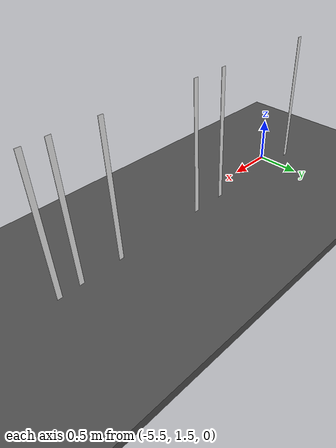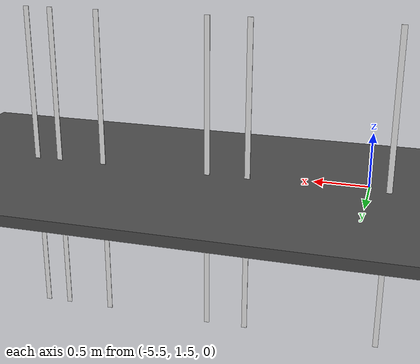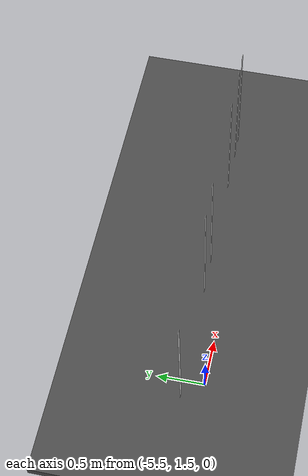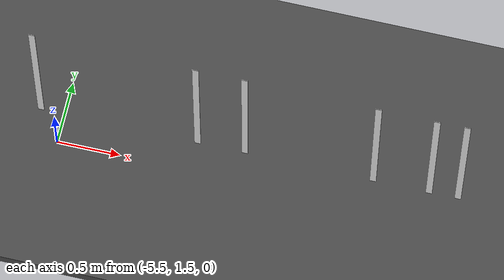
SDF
<sdf version="1.7">
 <world name="default">
  <model name="ground_plane">
   <static>1</static>
   <link name="link">
    <collision name="collision">
     <geometry><plane><normal>0 0 1</normal><size>100 100</size></plane></geometry>
     <surface><friction><ode><mu>100</mu><mu2>50</mu2></ode></friction></surface>
    </collision>
    <visual name="visual">
     <cast_shadows>0</cast_shadows>
     <geometry><plane><normal>0 0 1</normal><size>100 100</size></plane></geometry>
     <material>
      <script><uri>file://media/materials/scripts/gazebo.material</uri><name>Gazebo/Grey</name></script>
     </material>
    </visual>
   </link>
  </model>
  <model name="asphalt_plane">
   <static>1</static>
   <link name="link">
    <collision name="collision"><geometry><box><size>20 20 0.1</size></box></geometry></collision>
    <visual name="visual">
     <cast_shadows>0</cast_shadows>
     <geometry><box><size>20 20 0.1</size></box></geometry>
     <material>
      <script>
       <uri>model://asphalt_plane/materials/scripts</uri>
       <uri>model://asphalt_plane/materials/textures</uri>
       <name>vrc/asphalt</name>
      </script>
     </material>
    </visual>
    <velocity_decay><linear>0</linear><angular>0</angular></velocity_decay>
   </link>
   <pose>0.000359 -0.189252 0 0 -0 0</pose>
  </model>
  <model name="reflective_tape_5cm_clone_2_clone_10">
   <static>1</static>
   <pose>-5.68322 1.7189 0 0 -0 0</pose>
   <link name="link">
    <inertial>
     <mass>0.01</mass>
     <inertia><ixx>1e-06</ixx><ixy>0</ixy><ixz>0</ixz><iyy>1e-06</iyy><iyz>0</iyz><izz>1e-06</izz></inertia>
    </inertial>
    <collision name="collision">
     <laser_retro>1000</laser_retro>
     <geometry><box><size>0.05 0.005 3</size></box></geometry>
    </collision>
    <visual name="visual">
     <geometry><box><size>0.05 0.005 3</size></box></geometry>
     <material>
      <script><name>Gazebo/WhiteGlow</name><uri>file://media/materials/scripts/gazebo.material</uri></script>
      <ambient>1 1 1 1</ambient>
      <diffuse>1 1 1 1</diffuse>
      <specular>1 1 1 1</specular>
      <emissive>1 1 1 1</emissive>
     </material>
     <laser_retro>1000</laser_retro>
    </visual>
   </link>
  </model>
  <model name="reflective_tape_5cm_clone_2_clone_11">
   <static>1</static>
   <pose>-3.03991 1.71983 0 0 -0 0</pose>
   <link name="link">
    <inertial>
     <mass>0.01</mass>
     <inertia><ixx>1e-06</ixx><ixy>0</ixy><ixz>0</ixz><iyy>1e-06</iyy><iyz>0</iyz><izz>1e-06</izz></inertia>
    </inertial>
    <collision name="collision">
     <laser_retro>1000</laser_retro>
     <geometry><box><size>0.05 0.005 3</size></box></geometry>
    </collision>
    <visual name="visual">
     <geometry><box><size>0.05 0.005 3</size></box></geometry>
     <material>
      <script><name>Gazebo/WhiteGlow</name><uri>file://media/materials/scripts/gazebo.material</uri></script>
      <ambient>1 1 1 1</ambient>
      <diffuse>1 1 1 1</diffuse>
      <specular>1 1 1 1</specular>
      <emissive>1 1 1 1</emissive>
     </material>
     <laser_retro>1000</laser_retro>
    </visual>
   </link>
  </model>
  <model name="reflective_tape_5cm_clone_2_clone_13">
   <static>1</static>
   <pose>-2.59801 1.72027 0 0 -0 0</pose>
   <link name="link">
    <inertial>
     <mass>0.01</mass>
     <inertia><ixx>1e-06</ixx><ixy>0</ixy><ixz>0</ixz><iyy>1e-06</iyy><iyz>0</iyz><izz>1e-06</izz></inertia>
    </inertial>
    <collision name="collision">
     <laser_retro>1000</laser_retro>
     <geometry><box><size>0.05 0.005 3</size></box></geometry>
    </collision>
    <visual name="visual">
     <geometry><box><size>0.05 0.005 3</size></box></geometry>
     <material>
      <script><name>Gazebo/WhiteGlow</name><uri>file://media/materials/scripts/gazebo.material</uri></script>
      <ambient>1 1 1 1</ambient>
      <diffuse>1 1 1 1</diffuse>
      <specular>1 1 1 1</specular>
      <emissive>1 1 1 1</emissive>
     </material>
     <laser_retro>1000</laser_retro>
    </visual>
   </link>
  </model>
  <model name="reflective_tape_5cm_clone_2_clone_14">
   <static>1</static>
   <pose>-2.37098 1.72503 0 0 -0 0</pose>
   <link name="link">
    <inertial>
     <mass>0.01</mass>
     <inertia><ixx>1e-06</ixx><ixy>0</ixy><ixz>0</ixz><iyy>1e-06</iyy><iyz>0</iyz><izz>1e-06</izz></inertia>
    </inertial>
    <collision name="collision">
     <laser_retro>1000</laser_retro>
     <geometry><box><size>0.05 0.005 3</size></box></geometry>
    </collision>
    <visual name="visual">
     <geometry><box><size>0.05 0.005 3</size></box></geometry>
     <material>
      <script><name>Gazebo/WhiteGlow</name><uri>file://media/materials/scripts/gazebo.material</uri></script>
      <ambient>1 1 1 1</ambient>
      <diffuse>1 1 1 1</diffuse>
      <specular>1 1 1 1</specular>
      <emissive>1 1 1 1</emissive>
     </material>
     <laser_retro>1000</laser_retro>
    </visual>
   </link>
  </model>
  <model name="reflective_tape_5cm_clone_2_clone_20">
   <static>1</static>
   <pose>-4.05645 1.72243 0 0 -0 0</pose>
   <link name="link">
    <inertial>
     <mass>0.01</mass>
     <inertia><ixx>1e-06</ixx><ixy>0</ixy><ixz>0</ixz><iyy>1e-06</iyy><iyz>0</iyz><izz>1e-06</izz></inertia>
    </inertial>
    <collision name="collision">
     <laser_retro>1000</laser_retro>
     <geometry><box><size>0.05 0.005 3</size></box></geometry>
    </collision>
    <visual name="visual">
     <geometry><box><size>0.05 0.005 3</size></box></geometry>
     <material>
      <script><name>Gazebo/WhiteGlow</name><uri>file://media/materials/scripts/gazebo.material</uri></script>
      <ambient>1 1 1 1</ambient>
      <diffuse>1 1 1 1</diffuse>
      <specular>1 1 1 1</specular>
      <emissive>1 1 1 1</emissive>
     </material>
     <laser_retro>1000</laser_retro>
    </visual>
   </link>
  </model>
  <model name="reflective_tape_5cm_clone_2_clone_21">
   <static>1</static>
   <pose>-4.4315 1.71875 0 0 -0 0</pose>
   <link name="link">
    <inertial>
     <mass>0.01</mass>
     <inertia><ixx>1e-06</ixx><ixy>0</ixy><ixz>0</ixz><iyy>1e-06</iyy><iyz>0</iyz><izz>1e-06</izz></inertia>
    </inertial>
    <collision name="collision">
     <laser_retro>1000</laser_retro>
     <geometry><box><size>0.05 0.005 3</size></box></geometry>
    </collision>
    <visual name="visual">
     <geometry><box><size>0.05 0.005 3</size></box></geometry>
     <material>
      <script><name>Gazebo/WhiteGlow</name><uri>file://media/materials/scripts/gazebo.material</uri></script>
      <ambient>1 1 1 1</ambient>
      <diffuse>1 1 1 1</diffuse>
      <specular>1 1 1 1</specular>
      <emissive>1 1 1 1</emissive>
     </material>
     <laser_retro>1000</laser_retro>
    </visual>
   </link>
  </model>
 </world>
</sdf>
